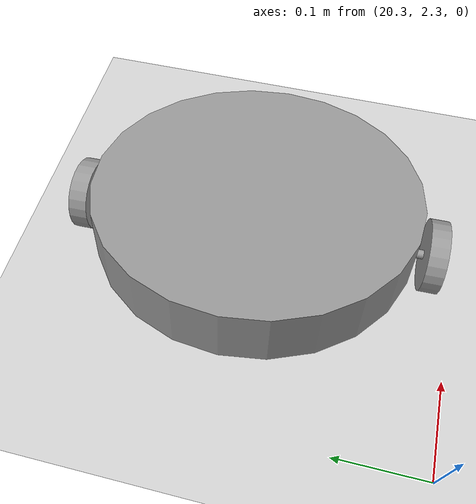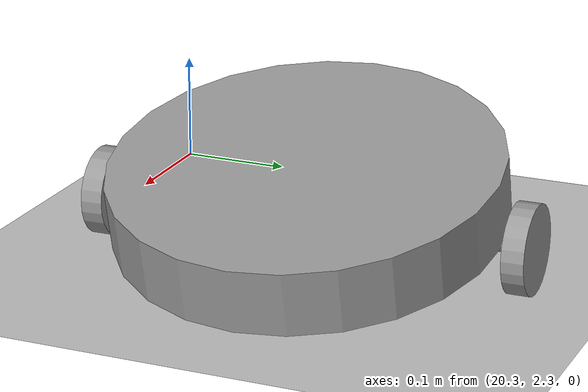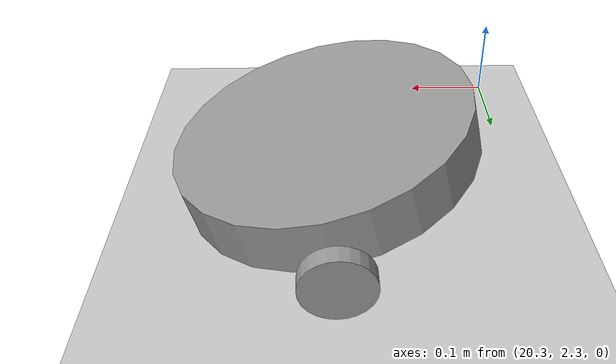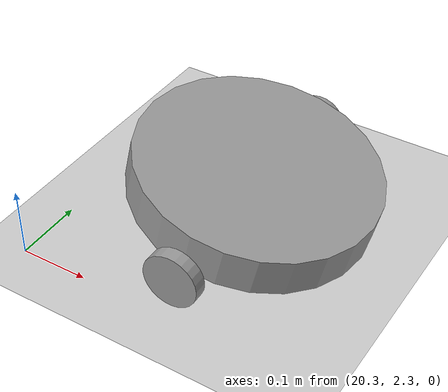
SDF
<sdf version="1.6">
 <world name="default">
  <model name="ground_plane">
   <static>1</static>
   <link name="link">
    <collision name="collision">
     <geometry><plane><normal>0 0 1</normal><size>100 100</size></plane></geometry>
     <surface>
      <contact><collide_bitmask>65535</collide_bitmask></contact>
      <friction><ode><mu>100</mu><mu2>50</mu2></ode></friction>
     </surface>
    </collision>
    <visual name="visual">
     <cast_shadows>0</cast_shadows>
     <geometry><plane><normal>0 0 1</normal><size>100 100</size></plane></geometry>
     <material>
      <script><uri>file://media/materials/scripts/gazebo.material</uri><name>Gazebo/Grey</name></script>
     </material>
    </visual>
   </link>
  </model>
  <model name="vacuum_robot">
   <link name="link_0_0">
    <pose>-0.357654 -0.121448 0.03 -6e-06 -1e-06 0.000206</pose>
    <inertial>
     <mass>1</mass>
     <inertia><ixx>0.145833</ixx><ixy>0</ixy><ixz>0</ixz><iyy>0.145833</iyy><iyz>0</iyz><izz>0.125</izz></inertia>
    </inertial>
    <visual name="visual">
     <geometry><cylinder><radius>0.175</radius><length>0.06</length></cylinder></geometry>
     <material>
      <lighting>1</lighting>
      <script><uri>file://media/materials/scripts/gazebo.material</uri><name>Gazebo/Grey</name></script>
      <shader type="pixel"><normal_map>__default__</normal_map></shader>
      <ambient>0.3 0.3 0.3 1</ambient>
      <diffuse>0.7 0.7 0.7 1</diffuse>
      <specular>0.01 0.01 0.01 1</specular>
      <emissive>0 0 0 1</emissive>
     </material>
    </visual>
    <collision name="collision">
     <geometry><cylinder><radius>0.175</radius><length>0.06</length></cylinder></geometry>
     <surface>
      <friction>
       <ode><mu>1</mu><mu2>1</mu2><fdir1>0 0 0</fdir1><slip1>0</slip1><slip2>0</slip2></ode>
       <torsional>
        <coefficient>1</coefficient>
        <patch_radius>0</patch_radius>
        <surface_radius>0</surface_radius>
        <use_patch_radius>1</use_patch_radius>
        <ode><slip>0</slip></ode>
       </torsional>
      </friction>
      <bounce><restitution_coefficient>0</restitution_coefficient><threshold>1e+06</threshold></bounce>
      <contact>
       <collide_without_contact>0</collide_without_contact>
       <collide_without_contact_bitmask>1</collide_without_contact_bitmask>
       <collide_bitmask>1</collide_bitmask>
       <ode>
        <soft_cfm>0</soft_cfm>
        <soft_erp>0.2</soft_erp>
        <kp>1e+13</kp>
        <kd>1</kd>
        <max_vel>0.01</max_vel>
        <min_depth>0</min_depth>
       </ode>
       <bullet>
        <split_impulse>1</split_impulse>
        <split_impulse_penetration_threshold>-0.01</split_impulse_penetration_threshold>
        <soft_cfm>0</soft_cfm>
        <soft_erp>0.2</soft_erp>
        <kp>1e+13</kp>
        <kd>1</kd>
       </bullet>
      </contact>
     </surface>
    </collision>
   </link>
   <link name="link_1">
    <pose>-0.357614 -0.316577 0.000459 1.57 -1e-06 0.000206</pose>
    <inertial>
     <mass>1</mass>
     <inertia><ixx>0.145833</ixx><ixy>0</ixy><ixz>0</ixz><iyy>0.145833</iyy><iyz>0</iyz><izz>0.125</izz></inertia>
    </inertial>
    <visual name="visual">
     <geometry><cylinder><radius>0.04</radius><length>0.02</length></cylinder></geometry>
     <material>
      <lighting>1</lighting>
      <script><uri>file://media/materials/scripts/gazebo.material</uri><name>Gazebo/Grey</name></script>
      <shader type="pixel"><normal_map>__default__</normal_map></shader>
      <ambient>0.3 0.3 0.3 1</ambient>
      <diffuse>0.7 0.7 0.7 1</diffuse>
      <specular>0.01 0.01 0.01 1</specular>
      <emissive>0 0 0 1</emissive>
     </material>
    </visual>
    <collision name="collision">
     <geometry><cylinder><radius>0.04</radius><length>0.02</length></cylinder></geometry>
     <surface>
      <friction>
       <ode><mu>1</mu><mu2>1</mu2><fdir1>0 0 0</fdir1><slip1>0</slip1><slip2>0</slip2></ode>
       <torsional>
        <coefficient>1</coefficient>
        <patch_radius>0</patch_radius>
        <surface_radius>0</surface_radius>
        <use_patch_radius>1</use_patch_radius>
        <ode><slip>0</slip></ode>
       </torsional>
      </friction>
      <bounce><restitution_coefficient>0</restitution_coefficient><threshold>1e+06</threshold></bounce>
      <contact>
       <collide_without_contact>0</collide_without_contact>
       <collide_without_contact_bitmask>1</collide_without_contact_bitmask>
       <collide_bitmask>1</collide_bitmask>
       <ode>
        <soft_cfm>0</soft_cfm>
        <soft_erp>0.2</soft_erp>
        <kp>1e+13</kp>
        <kd>1</kd>
        <max_vel>0.01</max_vel>
        <min_depth>0</min_depth>
       </ode>
       <bullet>
        <split_impulse>1</split_impulse>
        <split_impulse_penetration_threshold>-0.01</split_impulse_penetration_threshold>
        <soft_cfm>0</soft_cfm>
        <soft_erp>0.2</soft_erp>
        <kp>1e+13</kp>
        <kd>1</kd>
       </bullet>
      </contact>
     </surface>
    </collision>
   </link>
   <link name="link_1_clone">
    <pose>-0.357695 0.073703 0.000303 1.56999 -2e-06 0.000412</pose>
    <inertial>
     <mass>1</mass>
     <inertia><ixx>0.145833</ixx><ixy>0</ixy><ixz>0</ixz><iyy>0.145833</iyy><iyz>0</iyz><izz>0.125</izz></inertia>
    </inertial>
    <visual name="visual">
     <geometry><cylinder><radius>0.04</radius><length>0.02</length></cylinder></geometry>
     <material>
      <lighting>1</lighting>
      <script><uri>file://media/materials/scripts/gazebo.material</uri><name>Gazebo/Grey</name></script>
      <shader type="pixel"><normal_map>__default__</normal_map></shader>
      <ambient>0.3 0.3 0.3 1</ambient>
      <diffuse>0.7 0.7 0.7 1</diffuse>
      <specular>0.01 0.01 0.01 1</specular>
      <emissive>0 0 0 1</emissive>
     </material>
    </visual>
    <collision name="collision">
     <geometry><cylinder><radius>0.04</radius><length>0.02</length></cylinder></geometry>
     <surface>
      <friction>
       <ode><mu>1</mu><mu2>1</mu2><fdir1>0 0 0</fdir1><slip1>0</slip1><slip2>0</slip2></ode>
       <torsional>
        <coefficient>1</coefficient>
        <patch_radius>0</patch_radius>
        <surface_radius>0</surface_radius>
        <use_patch_radius>1</use_patch_radius>
        <ode><slip>0</slip></ode>
       </torsional>
      </friction>
      <bounce><restitution_coefficient>0</restitution_coefficient><threshold>1e+06</threshold></bounce>
      <contact>
       <collide_without_contact>0</collide_without_contact>
       <collide_without_contact_bitmask>1</collide_without_contact_bitmask>
       <collide_bitmask>1</collide_bitmask>
       <ode>
        <soft_cfm>0</soft_cfm>
        <soft_erp>0.2</soft_erp>
        <kp>1e+13</kp>
        <kd>1</kd>
        <max_vel>0.01</max_vel>
        <min_depth>0</min_depth>
       </ode>
       <bullet>
        <split_impulse>1</split_impulse>
        <split_impulse_penetration_threshold>-0.01</split_impulse_penetration_threshold>
        <soft_cfm>0</soft_cfm>
        <soft_erp>0.2</soft_erp>
        <kp>1e+13</kp>
        <kd>1</kd>
       </bullet>
      </contact>
     </surface>
    </collision>
   </link>
   <link name="link_2">
    <pose>-0.357654 -0.121448 0 1.57 -1e-06 0.000206</pose>
    <inertial>
     <mass>1</mass>
     <inertia><ixx>0.145833</ixx><ixy>0</ixy><ixz>0</ixz><iyy>0.145833</iyy><iyz>0</iyz><izz>0.125</izz></inertia>
    </inertial>
    <visual name="visual">
     <geometry><cylinder><radius>0.005</radius><length>0.37</length></cylinder></geometry>
     <material>
      <lighting>1</lighting>
      <script><uri>file://media/materials/scripts/gazebo.material</uri><name>Gazebo/Grey</name></script>
      <shader type="pixel"><normal_map>__default__</normal_map></shader>
      <ambient>0.3 0.3 0.3 1</ambient>
      <diffuse>0.7 0.7 0.7 1</diffuse>
      <specular>0.01 0.01 0.01 1</specular>
      <emissive>0 0 0 1</emissive>
     </material>
    </visual>
    <collision name="collision">
     <geometry><cylinder><radius>0.005</radius><length>0.37</length></cylinder></geometry>
     <surface>
      <friction>
       <ode><mu>1</mu><mu2>1</mu2><fdir1>0 0 0</fdir1><slip1>0</slip1><slip2>0</slip2></ode>
       <torsional>
        <coefficient>1</coefficient>
        <patch_radius>0</patch_radius>
        <surface_radius>0</surface_radius>
        <use_patch_radius>1</use_patch_radius>
        <ode><slip>0</slip></ode>
       </torsional>
      </friction>
      <bounce><restitution_coefficient>0</restitution_coefficient><threshold>1e+06</threshold></bounce>
      <contact>
       <collide_without_contact>0</collide_without_contact>
       <collide_without_contact_bitmask>1</collide_without_contact_bitmask>
       <collide_bitmask>1</collide_bitmask>
       <ode>
        <soft_cfm>0</soft_cfm>
        <soft_erp>0.2</soft_erp>
        <kp>1e+13</kp>
        <kd>1</kd>
        <max_vel>0.01</max_vel>
        <min_depth>0</min_depth>
       </ode>
       <bullet>
        <split_impulse>1</split_impulse>
        <split_impulse_penetration_threshold>-0.01</split_impulse_penetration_threshold>
        <soft_cfm>0</soft_cfm>
        <soft_erp>0.2</soft_erp>
        <kp>1e+13</kp>
        <kd>1</kd>
       </bullet>
      </contact>
     </surface>
    </collision>
   </link>
   <joint name="link_0_0_JOINT_0" type="fixed">
    <parent>link_0_0</parent>
    <child>link_2</child>
    <physics>
     <ode><limit><cfm>0</cfm><erp>0.2</erp></limit><suspension><cfm>0</cfm><erp>0.2</erp></suspension></ode>
    </physics>
   </joint>
   <joint name="link_2_JOINT_4" type="revolute">
    <parent>link_2</parent>
    <child>link_1_clone</child>
    <axis>
     <xyz>0 0 1</xyz>
     <use_parent_model_frame>0</use_parent_model_frame>
     <limit><lower>-1e+16</lower><upper>1e+16</upper><effort>-1</effort><velocity>-1</velocity></limit>
     <dynamics>
      <spring_reference>0</spring_reference>
      <spring_stiffness>0</spring_stiffness>
      <damping>0</damping>
      <friction>0</friction>
     </dynamics>
    </axis>
    <physics>
     <ode><limit><cfm>0</cfm><erp>0.2</erp></limit><suspension><cfm>0</cfm><erp>0.2</erp></suspension></ode>
    </physics>
   </joint>
   <joint name="link_2_JOINT_5" type="revolute2">
    <parent>link_2</parent>
    <child>link_1</child>
    <axis>
     <xyz>1 0 0</xyz>
     <use_parent_model_frame>0</use_parent_model_frame>
     <limit>
      <lower>-1.79769e+308</lower>
      <upper>1.79769e+308</upper>
      <effort>-1</effort>
      <velocity>-1</velocity>
     </limit>
     <dynamics>
      <spring_reference>0</spring_reference>
      <spring_stiffness>0</spring_stiffness>
      <damping>0</damping>
     </dynamics>
    </axis>
    <axis2>
     <xyz>0 1 0</xyz>
     <use_parent_model_frame>0</use_parent_model_frame>
     <dynamics>
      <spring_reference>0</spring_reference>
      <spring_stiffness>0</spring_stiffness>
      <damping>0</damping>
     </dynamics>
     <limit>
      <lower>-1.79769e+308</lower>
      <upper>1.79769e+308</upper>
      <effort>-1</effort>
      <velocity>-1</velocity>
     </limit>
    </axis2>
    <physics>
     <ode><limit><cfm>0</cfm><erp>0.2</erp></limit><suspension><cfm>0</cfm><erp>0.2</erp></suspension></ode>
    </physics>
   </joint>
   <static>0</static>
   <pose>20.8653 2.65275 -0.041313 0.000353 0.228421 0.019221</pose>
  </model>
 </world>
</sdf>
